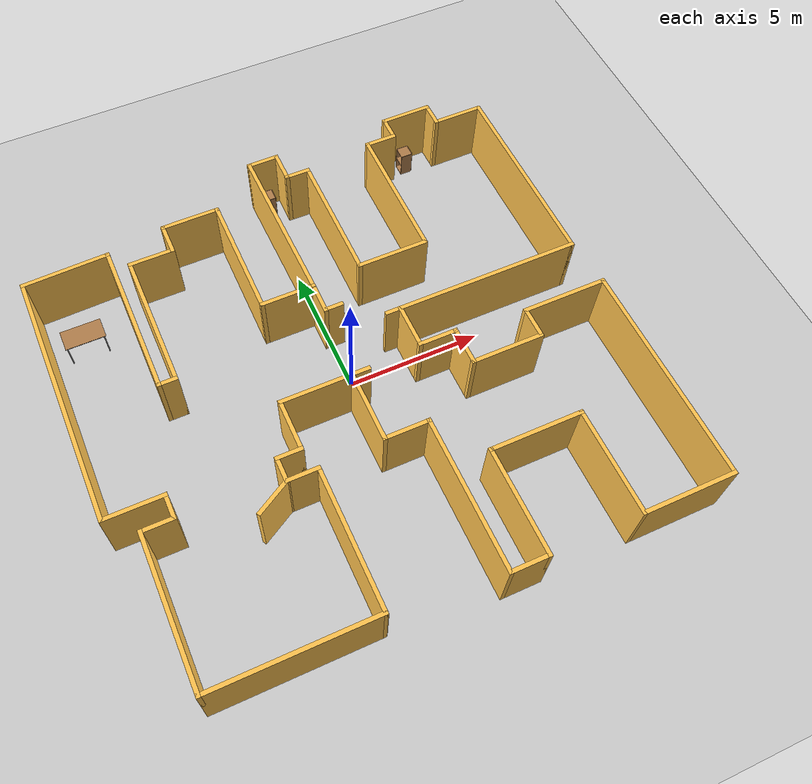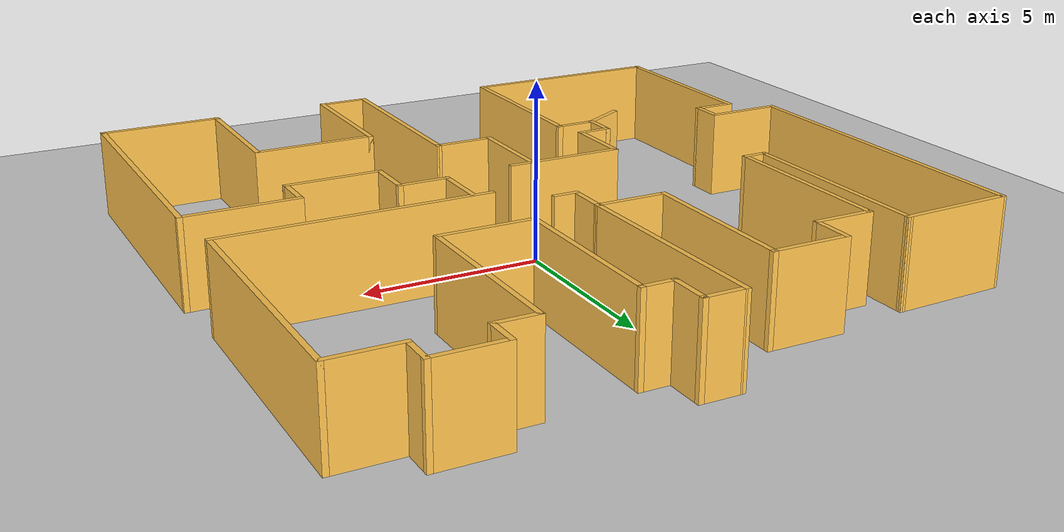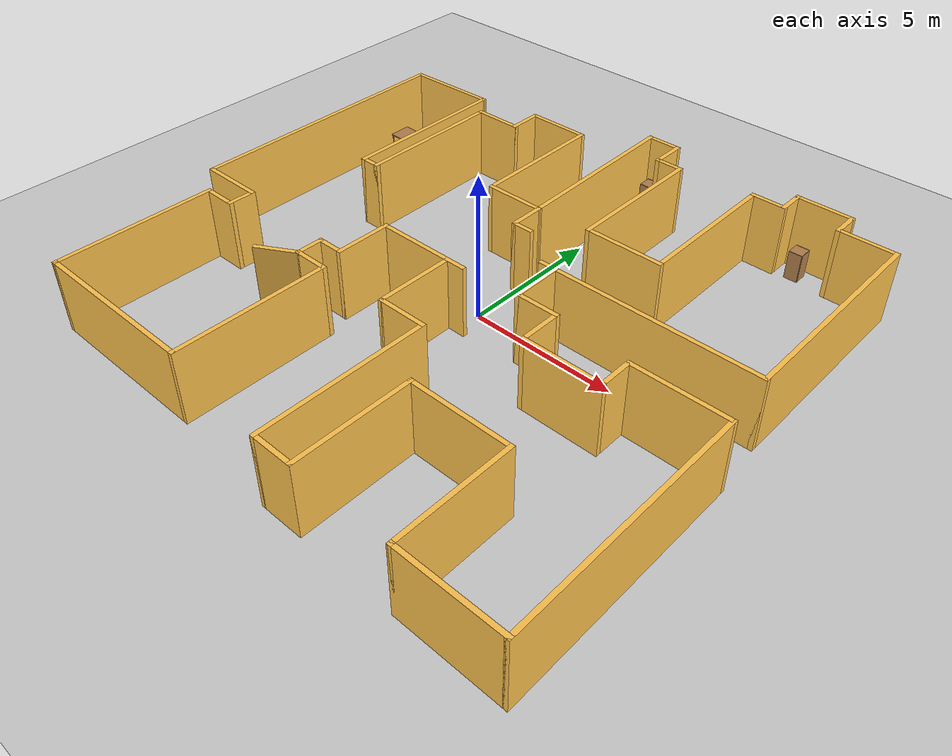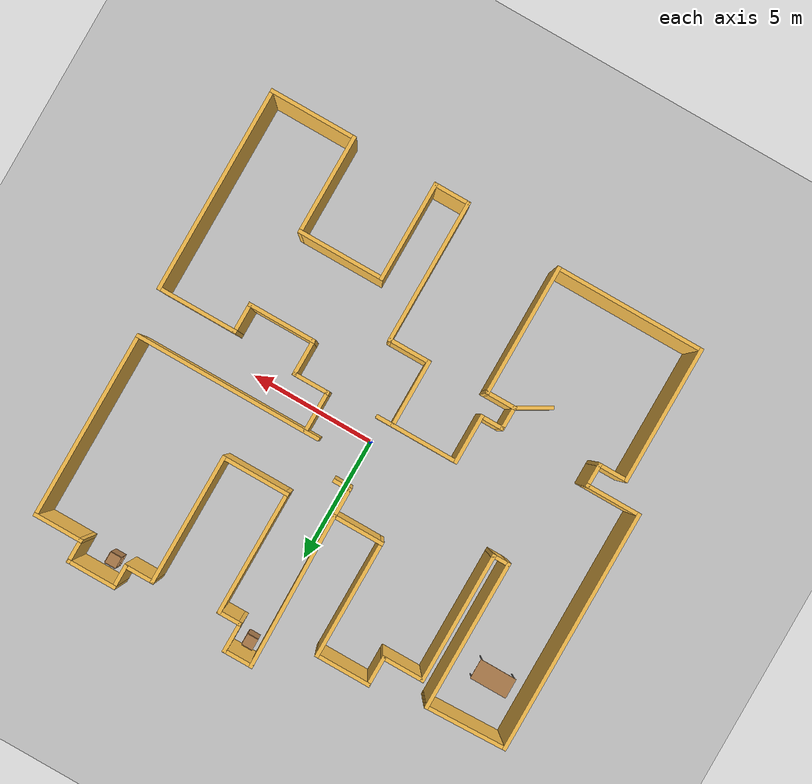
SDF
<sdf version="1.6">
 <world name="default">
  <model name="ground_plane">
   <static>1</static>
   <link name="link">
    <collision name="collision">
     <geometry><plane><normal>0 0 1</normal><size>100 100</size></plane></geometry>
     <surface>
      <contact><collide_bitmask>65535</collide_bitmask></contact>
      <friction><ode><mu>100</mu><mu2>50</mu2></ode></friction>
     </surface>
    </collision>
    <visual name="visual">
     <cast_shadows>0</cast_shadows>
     <geometry><plane><normal>0 0 1</normal><size>100 100</size></plane></geometry>
     <material>
      <script><uri>file://media/materials/scripts/gazebo.material</uri><name>Gazebo/Grey</name></script>
     </material>
    </visual>
   </link>
  </model>
  <model name="map_118">
   <pose>-0.142364 -0.062116 0 0 -0 0</pose>
   <link name="Wall_10">
    <collision name="Wall_10_Collision">
     <geometry><box><size>5.25 0.15 2.5</size></box></geometry>
     <pose>0 0 1.25 0 -0 0</pose>
    </collision>
    <visual name="Wall_10_Visual">
     <pose>0 0 1.25 0 -0 0</pose>
     <geometry><box><size>5.25 0.15 2.5</size></box></geometry>
     <material>
      <script><uri>file://media/materials/scripts/gazebo.material</uri><name>Gazebo/Grey</name></script>
      <ambient>1 0.764706 0.305882 1</ambient>
     </material>
     <meta><layer>0</layer></meta>
    </visual>
    <pose>-2.57383 -6.12539 0 0 -0 1.5708</pose>
   </link>
   <link name="Wall_11">
    <collision name="Wall_11_Collision">
     <geometry><box><size>1.25 0.15 2.5</size></box></geometry>
     <pose>0 0 1.25 0 -0 0</pose>
    </collision>
    <visual name="Wall_11_Visual">
     <pose>0 0 1.25 0 -0 0</pose>
     <geometry><box><size>1.25 0.15 2.5</size></box></geometry>
     <material>
      <script><uri>file://media/materials/scripts/gazebo.material</uri><name>Gazebo/Grey</name></script>
      <ambient>1 0.764706 0.305882 1</ambient>
     </material>
     <meta><layer>0</layer></meta>
    </visual>
    <pose>-3.12383 -3.57539 0 0 -0 3.14159</pose>
   </link>
   <link name="Wall_12">
    <collision name="Wall_12_Collision">
     <geometry><box><size>1 0.15 2.5</size></box></geometry>
     <pose>0 0 1.25 0 -0 0</pose>
    </collision>
    <visual name="Wall_12_Visual">
     <pose>0 0 1.25 0 -0 0</pose>
     <geometry><box><size>1 0.15 2.5</size></box></geometry>
     <material>
      <script><uri>file://media/materials/scripts/gazebo.material</uri><name>Gazebo/Grey</name></script>
      <ambient>1 0.764706 0.305882 1</ambient>
     </material>
     <meta><layer>0</layer></meta>
    </visual>
    <pose>-3.67383 -3.15039 0 0 -0 1.5708</pose>
   </link>
   <link name="Wall_13">
    <collision name="Wall_13_Collision">
     <geometry><box><size>1 0.15 2.5</size></box></geometry>
     <pose>0 0 1.25 0 -0 0</pose>
    </collision>
    <visual name="Wall_13_Visual">
     <pose>0 0 1.25 0 -0 0</pose>
     <geometry><box><size>1 0.15 2.5</size></box></geometry>
     <material>
      <script><uri>file://media/materials/scripts/gazebo.material</uri><name>Gazebo/Grey</name></script>
      <ambient>1 0.764706 0.305882 1</ambient>
     </material>
     <meta><layer>0</layer></meta>
    </visual>
    <pose>-3.24883 -2.72539 0 0 -0 0</pose>
   </link>
   <link name="Wall_14">
    <collision name="Wall_14_Collision">
     <geometry><box><size>2 0.15 2.5</size></box></geometry>
     <pose>0 0 1.25 0 -0 0</pose>
    </collision>
    <visual name="Wall_14_Visual">
     <pose>0 0 1.25 0 -0 0</pose>
     <geometry><box><size>2 0.15 2.5</size></box></geometry>
     <material>
      <script><uri>file://media/materials/scripts/gazebo.material</uri><name>Gazebo/Grey</name></script>
      <ambient>1 0.764706 0.305882 1</ambient>
     </material>
     <meta><layer>0</layer></meta>
    </visual>
    <pose>-2.82383 -1.80039 0 0 -0 1.5708</pose>
   </link>
   <link name="Wall_15">
    <collision name="Wall_15_Collision">
     <geometry><box><size>2.75 0.15 2.5</size></box></geometry>
     <pose>0 0 1.25 0 -0 0</pose>
    </collision>
    <visual name="Wall_15_Visual">
     <pose>0 0 1.25 0 -0 0</pose>
     <geometry><box><size>2.75 0.15 2.5</size></box></geometry>
     <material>
      <script><uri>file://media/materials/scripts/gazebo.material</uri><name>Gazebo/Grey</name></script>
      <ambient>1 0.764706 0.305882 1</ambient>
     </material>
     <meta><layer>0</layer></meta>
    </visual>
    <pose>-1.52383 -0.87539 0 0 -0 0</pose>
   </link>
   <link name="Wall_16">
    <collision name="Wall_16_Collision">
     <geometry><box><size>2.75 0.15 2.5</size></box></geometry>
     <pose>0 0 1.25 0 -0 0</pose>
    </collision>
    <visual name="Wall_16_Visual">
     <pose>0 0 1.25 0 -0 0</pose>
     <geometry><box><size>2.75 0.15 2.5</size></box></geometry>
     <material>
      <script><uri>file://media/materials/scripts/gazebo.material</uri><name>Gazebo/Grey</name></script>
      <ambient>1 0.764706 0.305882 1</ambient>
     </material>
     <meta><layer>0</layer></meta>
    </visual>
    <pose>-0.223829 -2.17539 0 0 -0 -1.5708</pose>
   </link>
   <link name="Wall_17">
    <collision name="Wall_17_Collision">
     <geometry><box><size>1.75 0.15 2.5</size></box></geometry>
     <pose>0 0 1.25 0 -0 0</pose>
    </collision>
    <visual name="Wall_17_Visual">
     <pose>0 0 1.25 0 -0 0</pose>
     <geometry><box><size>1.75 0.15 2.5</size></box></geometry>
     <material>
      <script><uri>file://media/materials/scripts/gazebo.material</uri><name>Gazebo/Grey</name></script>
      <ambient>1 0.764706 0.305882 1</ambient>
     </material>
     <meta><layer>0</layer></meta>
    </visual>
    <pose>0.576171 -3.47539 0 0 -0 0</pose>
   </link>
   <link name="Wall_18">
    <collision name="Wall_18_Collision">
     <geometry><box><size>5.75 0.15 2.5</size></box></geometry>
     <pose>0 0 1.25 0 -0 0</pose>
    </collision>
    <visual name="Wall_18_Visual">
     <pose>0 0 1.25 0 -0 0</pose>
     <geometry><box><size>5.75 0.15 2.5</size></box></geometry>
     <material>
      <script><uri>file://media/materials/scripts/gazebo.material</uri><name>Gazebo/Grey</name></script>
      <ambient>1 0.764706 0.305882 1</ambient>
     </material>
     <meta><layer>0</layer></meta>
    </visual>
    <pose>1.37617 -6.27539 0 0 -0 -1.5708</pose>
   </link>
   <link name="Wall_19">
    <collision name="Wall_19_Collision">
     <geometry><box><size>1.5 0.15 2.5</size></box></geometry>
     <pose>0 0 1.25 0 -0 0</pose>
    </collision>
    <visual name="Wall_19_Visual">
     <pose>0 0 1.25 0 -0 0</pose>
     <geometry><box><size>1.5 0.15 2.5</size></box></geometry>
     <material>
      <script><uri>file://media/materials/scripts/gazebo.material</uri><name>Gazebo/Grey</name></script>
      <ambient>1 0.764706 0.305882 1</ambient>
     </material>
     <meta><layer>0</layer></meta>
    </visual>
    <pose>2.05117 -9.07539 0 0 -0 0</pose>
   </link>
   <link name="Wall_20">
    <collision name="Wall_20_Collision">
     <geometry><box><size>4 0.15 2.5</size></box></geometry>
     <pose>0 0 1.25 0 -0 0</pose>
    </collision>
    <visual name="Wall_20_Visual">
     <pose>0 0 1.25 0 -0 0</pose>
     <geometry><box><size>4 0.15 2.5</size></box></geometry>
     <material>
      <script><uri>file://media/materials/scripts/gazebo.material</uri><name>Gazebo/Grey</name></script>
      <ambient>1 0.764706 0.305882 1</ambient>
     </material>
     <meta><layer>0</layer></meta>
    </visual>
    <pose>2.72617 -7.15039 0 0 -0 1.5708</pose>
   </link>
   <link name="Wall_21">
    <collision name="Wall_21_Collision">
     <geometry><box><size>3.5 0.15 2.5</size></box></geometry>
     <pose>0 0 1.25 0 -0 0</pose>
    </collision>
    <visual name="Wall_21_Visual">
     <pose>0 0 1.25 0 -0 0</pose>
     <geometry><box><size>3.5 0.15 2.5</size></box></geometry>
     <material>
      <script><uri>file://media/materials/scripts/gazebo.material</uri><name>Gazebo/Grey</name></script>
      <ambient>1 0.764706 0.305882 1</ambient>
     </material>
     <meta><layer>0</layer></meta>
    </visual>
    <pose>4.40117 -5.22539 0 0 -0 0</pose>
   </link>
   <link name="Wall_22">
    <collision name="Wall_22_Collision">
     <geometry><box><size>4 0.15 2.5</size></box></geometry>
     <pose>0 0 1.25 0 -0 0</pose>
    </collision>
    <visual name="Wall_22_Visual">
     <pose>0 0 1.25 0 -0 0</pose>
     <geometry><box><size>4 0.15 2.5</size></box></geometry>
     <material>
      <script><uri>file://media/materials/scripts/gazebo.material</uri><name>Gazebo/Grey</name></script>
      <ambient>1 0.764706 0.305882 1</ambient>
     </material>
     <meta><layer>0</layer></meta>
    </visual>
    <pose>6.07617 -7.15039 0 0 -0 -1.5708</pose>
   </link>
   <link name="Wall_23">
    <collision name="Wall_23_Collision">
     <geometry><box><size>3.5 0.15 2.5</size></box></geometry>
     <pose>0 0 1.25 0 -0 0</pose>
    </collision>
    <visual name="Wall_23_Visual">
     <pose>0 0 1.25 0 -0 0</pose>
     <geometry><box><size>3.5 0.15 2.5</size></box></geometry>
     <material>
      <script><uri>file://media/materials/scripts/gazebo.material</uri><name>Gazebo/Grey</name></script>
      <ambient>1 0.764706 0.305882 1</ambient>
     </material>
     <meta><layer>0</layer></meta>
    </visual>
    <pose>7.75117 -9.07539 0 0 -0 0</pose>
   </link>
   <link name="Wall_24">
    <collision name="Wall_24_Collision">
     <geometry><box><size>8.25 0.15 2.5</size></box></geometry>
     <pose>0 0 1.25 0 -0 0</pose>
    </collision>
    <visual name="Wall_24_Visual">
     <pose>0 0 1.25 0 -0 0</pose>
     <geometry><box><size>8.25 0.15 2.5</size></box></geometry>
     <material>
      <script><uri>file://media/materials/scripts/gazebo.material</uri><name>Gazebo/Grey</name></script>
      <ambient>1 0.764706 0.305882 1</ambient>
     </material>
     <meta><layer>0</layer></meta>
    </visual>
    <pose>9.42617 -5.02539 0 0 -0 1.5708</pose>
   </link>
   <link name="Wall_25">
    <collision name="Wall_25_Collision">
     <geometry><box><size>3.25 0.15 2.5</size></box></geometry>
     <pose>0 0 1.25 0 -0 0</pose>
    </collision>
    <visual name="Wall_25_Visual">
     <pose>0 0 1.25 0 -0 0</pose>
     <geometry><box><size>3.25 0.15 2.5</size></box></geometry>
     <material>
      <script><uri>file://media/materials/scripts/gazebo.material</uri><name>Gazebo/Grey</name></script>
      <ambient>1 0.764706 0.305882 1</ambient>
     </material>
     <meta><layer>0</layer></meta>
    </visual>
    <pose>7.87617 -0.97539 0 0 -0 3.14159</pose>
   </link>
   <link name="Wall_26">
    <collision name="Wall_26_Collision">
     <geometry><box><size>1.25 0.15 2.5</size></box></geometry>
     <pose>0 0 1.25 0 -0 0</pose>
    </collision>
    <visual name="Wall_26_Visual">
     <pose>0 0 1.25 0 -0 0</pose>
     <geometry><box><size>1.25 0.15 2.5</size></box></geometry>
     <material>
      <script><uri>file://media/materials/scripts/gazebo.material</uri><name>Gazebo/Grey</name></script>
      <ambient>1 0.764706 0.305882 1</ambient>
     </material>
     <meta><layer>0</layer></meta>
    </visual>
    <pose>6.32617 -1.52539 0 0 -0 -1.5708</pose>
   </link>
   <link name="Wall_27">
    <collision name="Wall_27_Collision">
     <geometry><box><size>2.75 0.15 2.5</size></box></geometry>
     <pose>0 0 1.25 0 -0 0</pose>
    </collision>
    <visual name="Wall_27_Visual">
     <pose>0 0 1.25 0 -0 0</pose>
     <geometry><box><size>2.75 0.15 2.5</size></box></geometry>
     <material>
      <script><uri>file://media/materials/scripts/gazebo.material</uri><name>Gazebo/Grey</name></script>
      <ambient>1 0.764706 0.305882 1</ambient>
     </material>
     <meta><layer>0</layer></meta>
    </visual>
    <pose>5.02617 -2.07539 0 0 -0 3.14159</pose>
   </link>
   <link name="Wall_28">
    <collision name="Wall_28_Collision">
     <geometry><box><size>1.5 0.15 2.5</size></box></geometry>
     <pose>0 0 1.25 0 -0 0</pose>
    </collision>
    <visual name="Wall_28_Visual">
     <pose>0 0 1.25 0 -0 0</pose>
     <geometry><box><size>1.5 0.15 2.5</size></box></geometry>
     <material>
      <script><uri>file://media/materials/scripts/gazebo.material</uri><name>Gazebo/Grey</name></script>
      <ambient>1 0.764706 0.305882 1</ambient>
     </material>
     <meta><layer>0</layer></meta>
    </visual>
    <pose>3.72617 -1.40039 0 0 -0 1.5708</pose>
   </link>
   <link name="Wall_33">
    <collision name="Wall_33_Collision">
     <geometry><box><size>2 0.15 2.5</size></box></geometry>
     <pose>0 0 1.25 0 -0 0</pose>
    </collision>
    <visual name="Wall_33_Visual">
     <pose>0 0 1.25 0 -0 0</pose>
     <geometry><box><size>2 0.15 2.5</size></box></geometry>
     <material>
      <script><uri>file://media/materials/scripts/gazebo.material</uri><name>Gazebo/Grey</name></script>
      <ambient>1 0.764706 0.305882 1</ambient>
     </material>
     <meta><layer>0</layer></meta>
    </visual>
    <pose>8.30117 8.22461 0 0 -0 3.14159</pose>
   </link>
   <link name="Wall_34">
    <collision name="Wall_34_Collision">
     <geometry><box><size>1 0.15 2.5</size></box></geometry>
     <pose>0 0 1.25 0 -0 0</pose>
    </collision>
    <visual name="Wall_34_Visual">
     <pose>0 0 1.25 0 -0 0</pose>
     <geometry><box><size>1 0.15 2.5</size></box></geometry>
     <material>
      <script><uri>file://media/materials/scripts/gazebo.material</uri><name>Gazebo/Grey</name></script>
      <ambient>1 0.764706 0.305882 1</ambient>
     </material>
     <meta><layer>0</layer></meta>
    </visual>
    <pose>7.37617 8.64961 0 0 -0 1.5708</pose>
   </link>
   <link name="Wall_35">
    <collision name="Wall_35_Collision">
     <geometry><box><size>2 0.15 2.5</size></box></geometry>
     <pose>0 0 1.25 0 -0 0</pose>
    </collision>
    <visual name="Wall_35_Visual">
     <pose>0 0 1.25 0 -0 0</pose>
     <geometry><box><size>2 0.15 2.5</size></box></geometry>
     <material>
      <script><uri>file://media/materials/scripts/gazebo.material</uri><name>Gazebo/Grey</name></script>
      <ambient>1 0.764706 0.305882 1</ambient>
     </material>
     <meta><layer>0</layer></meta>
    </visual>
    <pose>6.45117 9.07461 0 0 -0 3.14159</pose>
   </link>
   <link name="Wall_36">
    <collision name="Wall_36_Collision">
     <geometry><box><size>1 0.15 2.5</size></box></geometry>
     <pose>0 0 1.25 0 -0 0</pose>
    </collision>
    <visual name="Wall_36_Visual">
     <pose>0 0 1.25 0 -0 0</pose>
     <geometry><box><size>1 0.15 2.5</size></box></geometry>
     <material>
      <script><uri>file://media/materials/scripts/gazebo.material</uri><name>Gazebo/Grey</name></script>
      <ambient>1 0.764706 0.305882 1</ambient>
     </material>
     <meta><layer>0</layer></meta>
    </visual>
    <pose>5.52617 8.64961 0 0 -0 -1.5708</pose>
   </link>
   <link name="Wall_37">
    <collision name="Wall_37_Collision">
     <geometry><box><size>1.25 0.15 2.5</size></box></geometry>
     <pose>0 0 1.25 0 -0 0</pose>
    </collision>
    <visual name="Wall_37_Visual">
     <pose>0 0 1.25 0 -0 0</pose>
     <geometry><box><size>1.25 0.15 2.5</size></box></geometry>
     <material>
      <script><uri>file://media/materials/scripts/gazebo.material</uri><name>Gazebo/Grey</name></script>
      <ambient>1 0.764706 0.305882 1</ambient>
     </material>
     <meta><layer>0</layer></meta>
    </visual>
    <pose>4.97617 8.22461 0 0 -0 3.14159</pose>
   </link>
   <link name="Wall_38">
    <collision name="Wall_38_Collision">
     <geometry><box><size>5.25 0.15 2.5</size></box></geometry>
     <pose>0 0 1.25 0 -0 0</pose>
    </collision>
    <visual name="Wall_38_Visual">
     <pose>0 0 1.25 0 -0 0</pose>
     <geometry><box><size>5.25 0.15 2.5</size></box></geometry>
     <material>
      <script><uri>file://media/materials/scripts/gazebo.material</uri><name>Gazebo/Grey</name></script>
      <ambient>1 0.764706 0.305882 1</ambient>
     </material>
     <meta><layer>0</layer></meta>
    </visual>
    <pose>4.42617 5.67461 0 0 -0 -1.5708</pose>
   </link>
   <link name="Wall_39">
    <collision name="Wall_39_Collision">
     <geometry><box><size>2.75 0.15 2.5</size></box></geometry>
     <pose>0 0 1.25 0 -0 0</pose>
    </collision>
    <visual name="Wall_39_Visual">
     <pose>0 0 1.25 0 -0 0</pose>
     <geometry><box><size>2.75 0.15 2.5</size></box></geometry>
     <material>
      <script><uri>file://media/materials/scripts/gazebo.material</uri><name>Gazebo/Grey</name></script>
      <ambient>1 0.764706 0.305882 1</ambient>
     </material>
     <meta><layer>0</layer></meta>
    </visual>
    <pose>3.12617 3.12461 0 0 -0 3.14159</pose>
   </link>
   <link name="Wall_4">
    <collision name="Wall_4_Collision">
     <geometry><box><size>9.75 0.15 2.5</size></box></geometry>
     <pose>0 0 1.25 0 -0 0</pose>
    </collision>
    <visual name="Wall_4_Visual">
     <pose>0 0 1.25 0 -0 0</pose>
     <geometry><box><size>9.75 0.15 2.5</size></box></geometry>
     <material>
      <script><uri>file://media/materials/scripts/gazebo.material</uri><name>Gazebo/Grey</name></script>
      <ambient>1 0.764706 0.305882 1</ambient>
     </material>
     <meta><layer>0</layer></meta>
    </visual>
    <pose>-9.42383 2.32461 0 0 -0 -1.5708</pose>
   </link>
   <link name="Wall_40">
    <collision name="Wall_40_Collision">
     <geometry><box><size>5 0.15 2.5</size></box></geometry>
     <pose>0 0 1.25 0 -0 0</pose>
    </collision>
    <visual name="Wall_40_Visual">
     <pose>0 0 1.25 0 -0 0</pose>
     <geometry><box><size>5 0.15 2.5</size></box></geometry>
     <material>
      <script><uri>file://media/materials/scripts/gazebo.material</uri><name>Gazebo/Grey</name></script>
      <ambient>1 0.764706 0.305882 1</ambient>
     </material>
     <meta><layer>0</layer></meta>
    </visual>
    <pose>1.82617 5.54961 0 0 -0 1.5708</pose>
   </link>
   <link name="Wall_43">
    <collision name="Wall_43_Collision">
     <geometry><box><size>1 0.15 2.5</size></box></geometry>
     <pose>0 0 1.25 0 -0 0</pose>
    </collision>
    <visual name="Wall_43_Visual">
     <pose>0 0 1.25 0 -0 0</pose>
     <geometry><box><size>1 0.15 2.5</size></box></geometry>
     <material>
      <script><uri>file://media/materials/scripts/gazebo.material</uri><name>Gazebo/Grey</name></script>
      <ambient>1 0.764706 0.305882 1</ambient>
     </material>
     <meta><layer>0</layer></meta>
    </visual>
    <pose>1.40117 7.97461 0 0 -0 3.14159</pose>
   </link>
   <link name="Wall_44">
    <collision name="Wall_44_Collision">
     <geometry><box><size>1.25 0.15 2.5</size></box></geometry>
     <pose>0 0 1.25 0 -0 0</pose>
    </collision>
    <visual name="Wall_44_Visual">
     <pose>0 0 1.25 0 -0 0</pose>
     <geometry><box><size>1.25 0.15 2.5</size></box></geometry>
     <material>
      <script><uri>file://media/materials/scripts/gazebo.material</uri><name>Gazebo/Grey</name></script>
      <ambient>1 0.764706 0.305882 1</ambient>
     </material>
     <meta><layer>0</layer></meta>
    </visual>
    <pose>0.976171 8.52461 0 0 -0 1.5708</pose>
   </link>
   <link name="Wall_45">
    <collision name="Wall_45_Collision">
     <geometry><box><size>1.25 0.15 2.5</size></box></geometry>
     <pose>0 0 1.25 0 -0 0</pose>
    </collision>
    <visual name="Wall_45_Visual">
     <pose>0 0 1.25 0 -0 0</pose>
     <geometry><box><size>1.25 0.15 2.5</size></box></geometry>
     <material>
      <script><uri>file://media/materials/scripts/gazebo.material</uri><name>Gazebo/Grey</name></script>
      <ambient>1 0.764706 0.305882 1</ambient>
     </material>
     <meta><layer>0</layer></meta>
    </visual>
    <pose>0.426171 9.07461 0 0 -0 3.14159</pose>
   </link>
   <link name="Wall_46">
    <collision name="Wall_46_Collision">
     <geometry><box><size>6.25 0.15 2.5</size></box></geometry>
     <pose>0 0 1.25 0 -0 0</pose>
    </collision>
    <visual name="Wall_46_Visual">
     <pose>0 0 1.25 0 -0 0</pose>
     <geometry><box><size>6.25 0.15 2.5</size></box></geometry>
     <material>
      <script><uri>file://media/materials/scripts/gazebo.material</uri><name>Gazebo/Grey</name></script>
      <ambient>1 0.764706 0.305882 1</ambient>
     </material>
     <meta><layer>0</layer></meta>
    </visual>
    <pose>-0.077305 6.02461 0 0 -0 -1.55554</pose>
   </link>
   <link name="Wall_47">
    <collision name="Wall_47_Collision">
     <geometry><box><size>2.09305 0.15 2.5</size></box></geometry>
     <pose>0 0 1.25 0 -0 0</pose>
    </collision>
    <visual name="Wall_47_Visual">
     <pose>0 0 1.25 0 -0 0</pose>
     <geometry><box><size>2.09305 0.15 2.5</size></box></geometry>
     <material>
      <script><uri>file://media/materials/scripts/gazebo.material</uri><name>Gazebo/Grey</name></script>
      <ambient>1 0.764706 0.305882 1</ambient>
     </material>
     <meta><layer>0</layer></meta>
    </visual>
    <pose>-1.00231 2.97461 0 0 -0 3.14159</pose>
   </link>
   <link name="Wall_48">
    <collision name="Wall_48_Collision">
     <geometry><box><size>4.75 0.15 2.5</size></box></geometry>
     <pose>0 0 1.25 0 -0 0</pose>
    </collision>
    <visual name="Wall_48_Visual">
     <pose>0 0 1.25 0 -0 0</pose>
     <geometry><box><size>4.75 0.15 2.5</size></box></geometry>
     <material>
      <script><uri>file://media/materials/scripts/gazebo.material</uri><name>Gazebo/Grey</name></script>
      <ambient>1 0.764706 0.305882 1</ambient>
     </material>
     <meta><layer>0</layer></meta>
    </visual>
    <pose>-1.97383 5.27461 0 0 -0 1.5708</pose>
   </link>
   <link name="Wall_49">
    <collision name="Wall_49_Collision">
     <geometry><box><size>2.25 0.15 2.5</size></box></geometry>
     <pose>0 0 1.25 0 -0 0</pose>
    </collision>
    <visual name="Wall_49_Visual">
     <pose>0 0 1.25 0 -0 0</pose>
     <geometry><box><size>2.25 0.15 2.5</size></box></geometry>
     <material>
      <script><uri>file://media/materials/scripts/gazebo.material</uri><name>Gazebo/Grey</name></script>
      <ambient>1 0.764706 0.305882 1</ambient>
     </material>
     <meta><layer>0</layer></meta>
    </visual>
    <pose>-3.02383 7.57461 0 0 -0 3.14159</pose>
   </link>
   <link name="Wall_5">
    <collision name="Wall_5_Collision">
     <geometry><box><size>2.25 0.15 2.5</size></box></geometry>
     <pose>0 0 1.25 0 -0 0</pose>
    </collision>
    <visual name="Wall_5_Visual">
     <pose>0 0 1.25 0 -0 0</pose>
     <geometry><box><size>2.25 0.15 2.5</size></box></geometry>
     <material>
      <script><uri>file://media/materials/scripts/gazebo.material</uri><name>Gazebo/Grey</name></script>
      <ambient>1 0.764706 0.305882 1</ambient>
     </material>
     <meta><layer>0</layer></meta>
    </visual>
    <pose>-8.37383 -2.47539 0 0 -0 0</pose>
   </link>
   <link name="Wall_50">
    <collision name="Wall_50_Collision">
     <geometry><box><size>1.25 0.15 2.5</size></box></geometry>
     <pose>0 0 1.25 0 -0 0</pose>
    </collision>
    <visual name="Wall_50_Visual">
     <pose>0 0 1.25 0 -0 0</pose>
     <geometry><box><size>1.25 0.15 2.5</size></box></geometry>
     <material>
      <script><uri>file://media/materials/scripts/gazebo.material</uri><name>Gazebo/Grey</name></script>
      <ambient>1 0.764706 0.305882 1</ambient>
     </material>
     <meta><layer>0</layer></meta>
    </visual>
    <pose>-4.07383 7.02461 0 0 -0 -1.5708</pose>
   </link>
   <link name="Wall_51">
    <collision name="Wall_51_Collision">
     <geometry><box><size>1.75 0.15 2.5</size></box></geometry>
     <pose>0 0 1.25 0 -0 0</pose>
    </collision>
    <visual name="Wall_51_Visual">
     <pose>0 0 1.25 0 -0 0</pose>
     <geometry><box><size>1.75 0.15 2.5</size></box></geometry>
     <material>
      <script><uri>file://media/materials/scripts/gazebo.material</uri><name>Gazebo/Grey</name></script>
      <ambient>1 0.764706 0.305882 1</ambient>
     </material>
     <meta><layer>0</layer></meta>
    </visual>
    <pose>-4.87383 6.47461 0 0 -0 3.14159</pose>
   </link>
   <link name="Wall_52">
    <collision name="Wall_52_Collision">
     <geometry><box><size>5.25 0.15 2.5</size></box></geometry>
     <pose>0 0 1.25 0 -0 0</pose>
    </collision>
    <visual name="Wall_52_Visual">
     <pose>0 0 1.25 0 -0 0</pose>
     <geometry><box><size>5.25 0.15 2.5</size></box></geometry>
     <material>
      <script><uri>file://media/materials/scripts/gazebo.material</uri><name>Gazebo/Grey</name></script>
      <ambient>1 0.764706 0.305882 1</ambient>
     </material>
     <meta><layer>0</layer></meta>
    </visual>
    <pose>-5.67383 3.92461 0 0 -0 -1.5708</pose>
   </link>
   <link name="Wall_53">
    <collision name="Wall_53_Collision">
     <geometry><box><size>0.75 0.15 2.5</size></box></geometry>
     <pose>0 0 1.25 0 -0 0</pose>
    </collision>
    <visual name="Wall_53_Visual">
     <pose>0 0 1.25 0 -0 0</pose>
     <geometry><box><size>0.75 0.15 2.5</size></box></geometry>
     <material>
      <script><uri>file://media/materials/scripts/gazebo.material</uri><name>Gazebo/Grey</name></script>
      <ambient>1 0.764706 0.305882 1</ambient>
     </material>
     <meta><layer>0</layer></meta>
    </visual>
    <pose>-5.97383 1.37461 0 0 -0 3.14159</pose>
   </link>
   <link name="Wall_54">
    <collision name="Wall_54_Collision">
     <geometry><box><size>6 0.15 2.5</size></box></geometry>
     <pose>0 0 1.25 0 -0 0</pose>
    </collision>
    <visual name="Wall_54_Visual">
     <pose>0 0 1.25 0 -0 0</pose>
     <geometry><box><size>6 0.15 2.5</size></box></geometry>
     <material>
      <script><uri>file://media/materials/scripts/gazebo.material</uri><name>Gazebo/Grey</name></script>
      <ambient>1 0.764706 0.305882 1</ambient>
     </material>
     <meta><layer>0</layer></meta>
    </visual>
    <pose>-6.27383 4.29961 0 0 -0 1.5708</pose>
   </link>
   <link name="Wall_55">
    <collision name="Wall_55_Collision">
     <geometry><box><size>3.30159 0.15 2.5</size></box></geometry>
     <pose>0 0 1.25 0 -0 0</pose>
    </collision>
    <visual name="Wall_55_Visual">
     <pose>0 0 1.25 0 -0 0</pose>
     <geometry><box><size>3.30159 0.15 2.5</size></box></geometry>
     <material>
      <script><uri>file://media/materials/scripts/gazebo.material</uri><name>Gazebo/Grey</name></script>
      <ambient>1 0.764706 0.305882 1</ambient>
     </material>
     <meta><layer>0</layer></meta>
    </visual>
    <pose>-7.84883 7.17461 0 0 -0 -3.10986</pose>
   </link>
   <link name="Wall_57">
    <collision name="Wall_57_Collision">
     <geometry><box><size>1.5 0.15 2.5</size></box></geometry>
     <pose>0 0 1.25 0 -0 0</pose>
    </collision>
    <visual name="Wall_57_Visual">
     <pose>0 0 1.25 0 -0 0</pose>
     <geometry><box><size>1.5 0.15 2.5</size></box></geometry>
     <material>
      <script><uri>file://media/materials/scripts/gazebo.material</uri><name>Gazebo/Grey</name></script>
      <ambient>1 0.764706 0.305882 1</ambient>
     </material>
     <meta><layer>0</layer></meta>
    </visual>
    <pose>-4.2584 -3.91289 0 0 -0 -2.61799</pose>
   </link>
   <link name="Wall_6">
    <collision name="Wall_6_Collision">
     <geometry><box><size>1 0.15 2.5</size></box></geometry>
     <pose>0 0 1.25 0 -0 0</pose>
    </collision>
    <visual name="Wall_6_Visual">
     <pose>0 0 1.25 0 -0 0</pose>
     <geometry><box><size>1 0.15 2.5</size></box></geometry>
     <material>
      <script><uri>file://media/materials/scripts/gazebo.material</uri><name>Gazebo/Grey</name></script>
      <ambient>1 0.764706 0.305882 1</ambient>
     </material>
     <meta><layer>0</layer></meta>
    </visual>
    <pose>-7.32383 -2.90039 0 0 -0 -1.5708</pose>
   </link>
   <link name="Wall_63">
    <collision name="Wall_63_Collision">
     <geometry><box><size>1.25 0.15 2.5</size></box></geometry>
     <pose>0 0 1.25 0 -0 0</pose>
    </collision>
    <visual name="Wall_63_Visual">
     <pose>0 0 1.25 0 -0 0</pose>
     <geometry><box><size>1.25 0.15 2.5</size></box></geometry>
     <material>
      <script><uri>file://media/materials/scripts/gazebo.material</uri><name>Gazebo/Grey</name></script>
      <ambient>1 0.764706 0.305882 1</ambient>
     </material>
     <meta><layer>0</layer></meta>
    </visual>
    <pose>-0.030782 2.42461 0 0 -0 -1.5708</pose>
   </link>
   <link name="Wall_65">
    <collision name="Wall_65_Collision">
     <geometry><box><size>0.75 0.15 2.5</size></box></geometry>
     <pose>0 0 1.25 0 -0 0</pose>
    </collision>
    <visual name="Wall_65_Visual">
     <pose>0 0 1.25 0 -0 0</pose>
     <geometry><box><size>0.75 0.15 2.5</size></box></geometry>
     <material>
      <script><uri>file://media/materials/scripts/gazebo.material</uri><name>Gazebo/Grey</name></script>
      <ambient>1 0.764706 0.305882 1</ambient>
     </material>
     <meta><layer>0</layer></meta>
    </visual>
    <pose>0.269218 1.87461 0 0 -0 0</pose>
   </link>
   <link name="Wall_69">
    <collision name="Wall_69_Collision">
     <geometry><box><size>7.5 0.15 2.5</size></box></geometry>
     <pose>0 0 1.25 0 -0 0</pose>
    </collision>
    <visual name="Wall_69_Visual">
     <pose>0 0 1.25 0 -0 0</pose>
     <geometry><box><size>7.5 0.15 2.5</size></box></geometry>
     <material>
      <script><uri>file://media/materials/scripts/gazebo.material</uri><name>Gazebo/Grey</name></script>
      <ambient>1 0.764706 0.305882 1</ambient>
     </material>
     <meta><layer>0</layer></meta>
    </visual>
    <pose>5.55117 0.87461 0 0 -0 0</pose>
   </link>
   <link name="Wall_7">
    <collision name="Wall_7_Collision">
     <geometry><box><size>1.25 0.15 2.5</size></box></geometry>
     <pose>0 0 1.25 0 -0 0</pose>
    </collision>
    <visual name="Wall_7_Visual">
     <pose>0 0 1.25 0 -0 0</pose>
     <geometry><box><size>1.25 0.15 2.5</size></box></geometry>
     <material>
      <script><uri>file://media/materials/scripts/gazebo.material</uri><name>Gazebo/Grey</name></script>
      <ambient>1 0.764706 0.305882 1</ambient>
     </material>
     <meta><layer>0</layer></meta>
    </visual>
    <pose>-7.87383 -3.32539 0 0 -0 3.14159</pose>
   </link>
   <link name="Wall_71">
    <collision name="Wall_71_Collision">
     <geometry><box><size>7.5 0.15 2.5</size></box></geometry>
     <pose>0 0 1.25 0 -0 0</pose>
    </collision>
    <visual name="Wall_71_Visual">
     <pose>0 0 1.25 0 -0 0</pose>
     <geometry><box><size>7.5 0.15 2.5</size></box></geometry>
     <material>
      <script><uri>file://media/materials/scripts/gazebo.material</uri><name>Gazebo/Grey</name></script>
      <ambient>1 0.764706 0.305882 1</ambient>
     </material>
     <meta><layer>0</layer></meta>
    </visual>
    <pose>9.22617 4.54961 0 0 -0 -1.5708</pose>
   </link>
   <link name="Wall_74">
    <collision name="Wall_74_Collision">
     <geometry><box><size>0.75 0.15 2.5</size></box></geometry>
     <pose>0 0 1.25 0 -0 0</pose>
    </collision>
    <visual name="Wall_74_Visual">
     <pose>0 0 1.25 0 -0 0</pose>
     <geometry><box><size>0.75 0.15 2.5</size></box></geometry>
     <material>
      <script><uri>file://media/materials/scripts/gazebo.material</uri><name>Gazebo/Grey</name></script>
      <ambient>1 0.764706 0.305882 1</ambient>
     </material>
     <meta><layer>0</layer></meta>
    </visual>
    <pose>0.076171 -0.87539 0 0 -0 0</pose>
   </link>
   <link name="Wall_76">
    <collision name="Wall_76_Collision">
     <geometry><box><size>1.5 0.15 2.5</size></box></geometry>
     <pose>0 0 1.25 0 -0 0</pose>
    </collision>
    <visual name="Wall_76_Visual">
     <pose>0 0 1.25 0 -0 0</pose>
     <geometry><box><size>1.5 0.15 2.5</size></box></geometry>
     <material>
      <script><uri>file://media/materials/scripts/gazebo.material</uri><name>Gazebo/Grey</name></script>
      <ambient>1 0.764706 0.305882 1</ambient>
     </material>
     <meta><layer>0</layer></meta>
    </visual>
    <pose>3.05117 -0.72539 0 0 -0 3.14159</pose>
   </link>
   <link name="Wall_77">
    <collision name="Wall_77_Collision">
     <geometry><box><size>1.75 0.15 2.5</size></box></geometry>
     <pose>0 0 1.25 0 -0 0</pose>
    </collision>
    <visual name="Wall_77_Visual">
     <pose>0 0 1.25 0 -0 0</pose>
     <geometry><box><size>1.75 0.15 2.5</size></box></geometry>
     <material>
      <script><uri>file://media/materials/scripts/gazebo.material</uri><name>Gazebo/Grey</name></script>
      <ambient>1 0.764706 0.305882 1</ambient>
     </material>
     <meta><layer>0</layer></meta>
    </visual>
    <pose>2.37617 0.07461 0 0 -0 1.5708</pose>
   </link>
   <link name="Wall_8">
    <collision name="Wall_8_Collision">
     <geometry><box><size>5.5 0.15 2.5</size></box></geometry>
     <pose>0 0 1.25 0 -0 0</pose>
    </collision>
    <visual name="Wall_8_Visual">
     <pose>0 0 1.25 0 -0 0</pose>
     <geometry><box><size>5.5 0.15 2.5</size></box></geometry>
     <material>
      <script><uri>file://media/materials/scripts/gazebo.material</uri><name>Gazebo/Grey</name></script>
      <ambient>1 0.764706 0.305882 1</ambient>
     </material>
     <meta><layer>0</layer></meta>
    </visual>
    <pose>-8.42383 -6.00039 0 0 -0 -1.5708</pose>
   </link>
   <link name="Wall_9">
    <collision name="Wall_9_Collision">
     <geometry><box><size>6 0.15 2.5</size></box></geometry>
     <pose>0 0 1.25 0 -0 0</pose>
    </collision>
    <visual name="Wall_9_Visual">
     <pose>0 0 1.25 0 -0 0</pose>
     <geometry><box><size>6 0.15 2.5</size></box></geometry>
     <material>
      <script><uri>file://media/materials/scripts/gazebo.material</uri><name>Gazebo/Grey</name></script>
      <ambient>1 0.764706 0.305882 1</ambient>
     </material>
     <meta><layer>0</layer></meta>
    </visual>
    <pose>-5.49883 -8.67539 0 0 -0 0</pose>
   </link>
   <static>1</static>
  </model>
  <model name="cabinet_0">
   <static>1</static>
   <link name="cabinet_bottom_plate">
    <inertial>
     <pose>0 0 -1 0 -0 0</pose>
     <inertia><ixx>2.05</ixx><ixy>0</ixy><ixz>0</ixz><iyy>2.05</iyy><iyz>0</iyz><izz>2.05</izz></inertia>
     <mass>25</mass>
    </inertial>
    <collision name="cabinet_bottom_plate_geom">
     <pose>0 0 0.01 0 -0 0</pose>
     <geometry><box><size>0.45 0.45 0.02</size></box></geometry>
    </collision>
    <visual name="cabinet_bottom_plate_geom_visual">
     <pose>0 0 0.01 0 -0 0</pose>
     <geometry><box><size>0.45 0.45 0.02</size></box></geometry>
     <material>
      <script><uri>file://media/materials/scripts/gazebo.material</uri><name>Gazebo/Wood</name></script>
     </material>
    </visual>
    <collision name="cabinet_bottom_plate_geom_cabinet_back_plate">
     <pose>0.235 0 0.51 0 -0 0</pose>
     <geometry><box><size>0.02 0.45 1.02</size></box></geometry>
    </collision>
    <visual name="cabinet_bottom_plate_geom_cabinet_back_plate_visual">
     <pose>0.235 0 0.51 0 -0 0</pose>
     <geometry><box><size>0.02 0.45 1.02</size></box></geometry>
     <material>
      <script><uri>file://media/materials/scripts/gazebo.material</uri><name>Gazebo/Wood</name></script>
     </material>
    </visual>
    <collision name="cabinet_bottom_plate_geom_cabinet_left_plate">
     <pose>0 0.235 0.51 0 -0 0</pose>
     <geometry><box><size>0.45 0.02 1.02</size></box></geometry>
    </collision>
    <visual name="cabinet_bottom_plate_geom_cabinet_left_plate_visual">
     <pose>0 0.235 0.51 0 -0 0</pose>
     <geometry><box><size>0.45 0.02 1.02</size></box></geometry>
     <material>
      <script><uri>file://media/materials/scripts/gazebo.material</uri><name>Gazebo/Wood</name></script>
     </material>
    </visual>
    <collision name="cabinet_bottom_plate_geom_cabinet_middle_plate">
     <pose>0 0 0.51 0 -0 0</pose>
     <geometry><box><size>0.45 0.45 0.02</size></box></geometry>
    </collision>
    <visual name="cabinet_bottom_plate_geom_cabinet_middle_plate_visual">
     <pose>0 0 0.51 0 -0 0</pose>
     <geometry><box><size>0.45 0.45 0.02</size></box></geometry>
     <material>
      <script><uri>file://media/materials/scripts/gazebo.material</uri><name>Gazebo/Wood</name></script>
     </material>
    </visual>
    <collision name="cabinet_bottom_plate_geom_cabinet_right_plate">
     <pose>0 -0.235 0.51 0 -0 0</pose>
     <geometry><box><size>0.45 0.02 1.02</size></box></geometry>
    </collision>
    <visual name="cabinet_bottom_plate_geom_cabinet_right_plate_visual">
     <pose>0 -0.235 0.51 0 -0 0</pose>
     <geometry><box><size>0.45 0.02 1.02</size></box></geometry>
     <material>
      <script><uri>file://media/materials/scripts/gazebo.material</uri><name>Gazebo/Wood</name></script>
     </material>
    </visual>
    <collision name="cabinet_bottom_plate_geom_cabinet_top_plate">
     <pose>0 0 1.01 0 -0 0</pose>
     <geometry><box><size>0.45 0.45 0.02</size></box></geometry>
    </collision>
    <visual name="cabinet_bottom_plate_geom_cabinet_top_plate_visual">
     <pose>0 0 1.01 0 -0 0</pose>
     <geometry><box><size>0.45 0.45 0.02</size></box></geometry>
     <material>
      <script><uri>file://media/materials/scripts/gazebo.material</uri><name>Gazebo/Wood</name></script>
     </material>
    </visual>
   </link>
   <pose>0.192717 8.5641 0 0 -0 0</pose>
  </model>
  <model name="cabinet_1">
   <static>1</static>
   <link name="cabinet_bottom_plate">
    <inertial>
     <pose>0 0 -1 0 -0 0</pose>
     <inertia><ixx>2.05</ixx><ixy>0</ixy><ixz>0</ixz><iyy>2.05</iyy><iyz>0</iyz><izz>2.05</izz></inertia>
     <mass>25</mass>
    </inertial>
    <collision name="cabinet_bottom_plate_geom">
     <pose>0 0 0.01 0 -0 0</pose>
     <geometry><box><size>0.45 0.45 0.02</size></box></geometry>
    </collision>
    <visual name="cabinet_bottom_plate_geom_visual">
     <pose>0 0 0.01 0 -0 0</pose>
     <geometry><box><size>0.45 0.45 0.02</size></box></geometry>
     <material>
      <script><uri>file://media/materials/scripts/gazebo.material</uri><name>Gazebo/Wood</name></script>
     </material>
    </visual>
    <collision name="cabinet_bottom_plate_geom_cabinet_back_plate">
     <pose>0.235 0 0.51 0 -0 0</pose>
     <geometry><box><size>0.02 0.45 1.02</size></box></geometry>
    </collision>
    <visual name="cabinet_bottom_plate_geom_cabinet_back_plate_visual">
     <pose>0.235 0 0.51 0 -0 0</pose>
     <geometry><box><size>0.02 0.45 1.02</size></box></geometry>
     <material>
      <script><uri>file://media/materials/scripts/gazebo.material</uri><name>Gazebo/Wood</name></script>
     </material>
    </visual>
    <collision name="cabinet_bottom_plate_geom_cabinet_left_plate">
     <pose>0 0.235 0.51 0 -0 0</pose>
     <geometry><box><size>0.45 0.02 1.02</size></box></geometry>
    </collision>
    <visual name="cabinet_bottom_plate_geom_cabinet_left_plate_visual">
     <pose>0 0.235 0.51 0 -0 0</pose>
     <geometry><box><size>0.45 0.02 1.02</size></box></geometry>
     <material>
      <script><uri>file://media/materials/scripts/gazebo.material</uri><name>Gazebo/Wood</name></script>
     </material>
    </visual>
    <collision name="cabinet_bottom_plate_geom_cabinet_middle_plate">
     <pose>0 0 0.51 0 -0 0</pose>
     <geometry><box><size>0.45 0.45 0.02</size></box></geometry>
    </collision>
    <visual name="cabinet_bottom_plate_geom_cabinet_middle_plate_visual">
     <pose>0 0 0.51 0 -0 0</pose>
     <geometry><box><size>0.45 0.45 0.02</size></box></geometry>
     <material>
      <script><uri>file://media/materials/scripts/gazebo.material</uri><name>Gazebo/Wood</name></script>
     </material>
    </visual>
    <collision name="cabinet_bottom_plate_geom_cabinet_right_plate">
     <pose>0 -0.235 0.51 0 -0 0</pose>
     <geometry><box><size>0.45 0.02 1.02</size></box></geometry>
    </collision>
    <visual name="cabinet_bottom_plate_geom_cabinet_right_plate_visual">
     <pose>0 -0.235 0.51 0 -0 0</pose>
     <geometry><box><size>0.45 0.02 1.02</size></box></geometry>
     <material>
      <script><uri>file://media/materials/scripts/gazebo.material</uri><name>Gazebo/Wood</name></script>
     </material>
    </visual>
    <collision name="cabinet_bottom_plate_geom_cabinet_top_plate">
     <pose>0 0 1.01 0 -0 0</pose>
     <geometry><box><size>0.45 0.45 0.02</size></box></geometry>
    </collision>
    <visual name="cabinet_bottom_plate_geom_cabinet_top_plate_visual">
     <pose>0 0 1.01 0 -0 0</pose>
     <geometry><box><size>0.45 0.45 0.02</size></box></geometry>
     <material>
      <script><uri>file://media/materials/scripts/gazebo.material</uri><name>Gazebo/Wood</name></script>
     </material>
    </visual>
   </link>
   <pose>6.04578 8.45714 0 0 -0 0</pose>
  </model>
  <model name="table">
   <static>1</static>
   <link name="link">
    <collision name="surface">
     <pose>0 0 1 0 -0 0</pose>
     <geometry><box><size>1.5 0.8 0.03</size></box></geometry>
     <surface><friction><ode><mu>0.6</mu><mu2>0.6</mu2></ode></friction></surface>
    </collision>
    <visual name="visual1">
     <pose>0 0 1 0 -0 0</pose>
     <geometry><box><size>1.5 0.8 0.03</size></box></geometry>
     <material>
      <script><uri>file://media/materials/scripts/gazebo.material</uri><name>Gazebo/Wood</name></script>
     </material>
    </visual>
    <collision name="front_left_leg">
     <pose>0.68 0.38 0.5 0 -0 0</pose>
     <geometry><cylinder><radius>0.02</radius><length>1</length></cylinder></geometry>
    </collision>
    <visual name="front_left_leg">
     <pose>0.68 0.38 0.5 0 -0 0</pose>
     <geometry><cylinder><radius>0.02</radius><length>1</length></cylinder></geometry>
     <material>
      <script><uri>file://media/materials/scripts/gazebo.material</uri><name>Gazebo/Grey</name></script>
     </material>
    </visual>
    <collision name="front_right_leg">
     <pose>0.68 -0.38 0.5 0 -0 0</pose>
     <geometry><cylinder><radius>0.02</radius><length>1</length></cylinder></geometry>
    </collision>
    <visual name="front_right_leg">
     <pose>0.68 -0.38 0.5 0 -0 0</pose>
     <geometry><cylinder><radius>0.02</radius><length>1</length></cylinder></geometry>
     <material>
      <script><uri>file://media/materials/scripts/gazebo.material</uri><name>Gazebo/Grey</name></script>
     </material>
    </visual>
    <collision name="back_right_leg">
     <pose>-0.68 -0.38 0.5 0 -0 0</pose>
     <geometry><cylinder><radius>0.02</radius><length>1</length></cylinder></geometry>
    </collision>
    <visual name="back_right_leg">
     <pose>-0.68 -0.38 0.5 0 -0 0</pose>
     <geometry><cylinder><radius>0.02</radius><length>1</length></cylinder></geometry>
     <material>
      <script><uri>file://media/materials/scripts/gazebo.material</uri><name>Gazebo/Grey</name></script>
     </material>
    </visual>
    <collision name="back_left_leg">
     <pose>-0.68 0.38 0.5 0 -0 0</pose>
     <geometry><cylinder><radius>0.02</radius><length>1</length></cylinder></geometry>
    </collision>
    <visual name="back_left_leg">
     <pose>-0.68 0.38 0.5 0 -0 0</pose>
     <geometry><cylinder><radius>0.02</radius><length>1</length></cylinder></geometry>
     <material>
      <script><uri>file://media/materials/scripts/gazebo.material</uri><name>Gazebo/Grey</name></script>
     </material>
    </visual>
   </link>
   <pose>-8.23391 5.28932 0 0 -0 0</pose>
  </model>
 </world>
</sdf>
